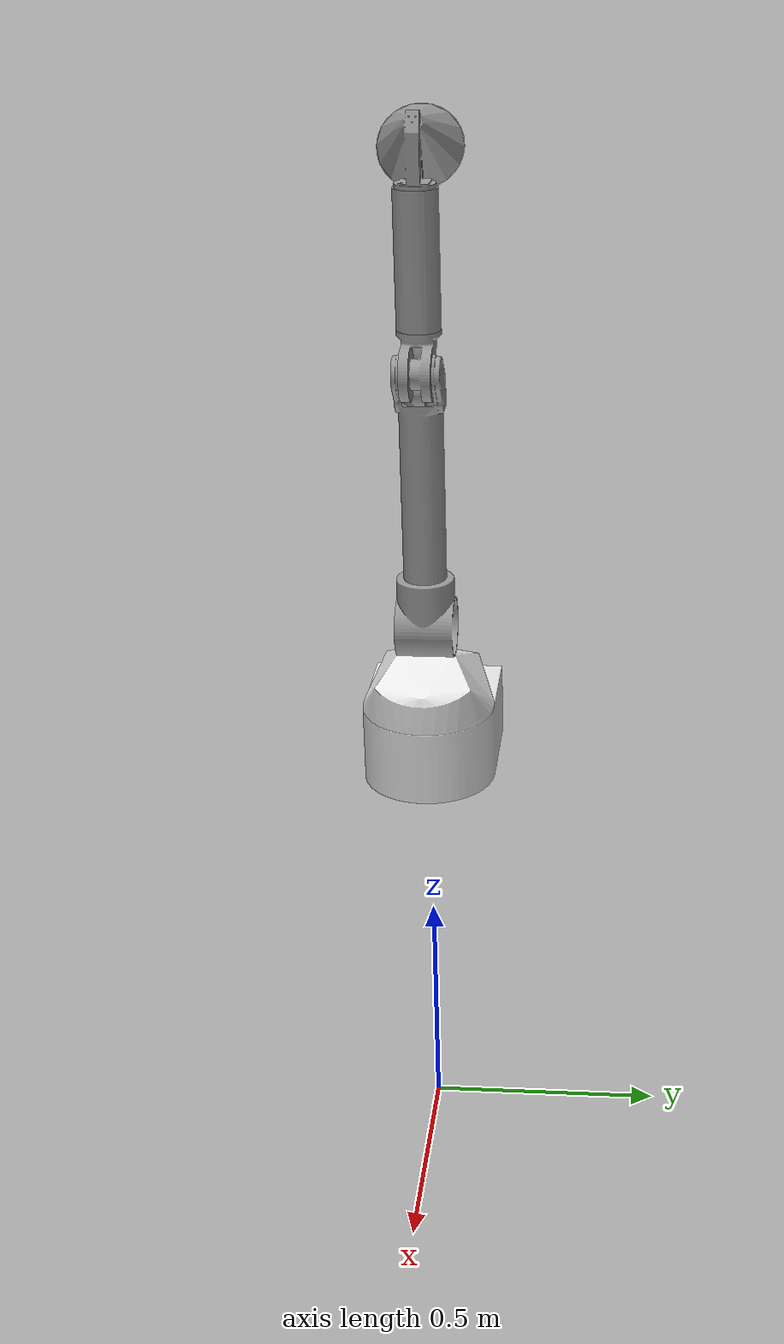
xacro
<?xml version="1.0" ?>
<robot name="wam_4dof"
        xmlns:xacro="http://www.ros.org/wiki/xacro"
        xmlns:xi="http://www.w3.org/2001/XInclude"
        xmlns:gazebo="http://playerstage.sourceforge.net/gazebo/xmlschema/#gz"
        xmlns:model="http://playerstage.sourceforge.net/gazebo/xmlschema/#model"
        xmlns:sensor="http://playerstage.sourceforge.net/gazebo/xmlschema/#sensor"
        xmlns:body="http://playerstage.sourceforge.net/gazebo/xmlschema/#body"
        xmlns:geom="http://playerstage.sourceforge.net/gazebo/xmlschema/#geom"
        xmlns:joint="http://playerstage.sourceforge.net/gazebo/xmlschema/#joint"
        xmlns:interface="http://playerstage.sourceforge.net/gazebo/xmlschema/#interface"
        xmlns:rendering="http://playerstage.sourceforge.net/gazebo/xmlschema/#rendering"
        xmlns:renderable="http://playerstage.sourceforge.net/gazebo/xmlschema/#renderable"
        xmlns:controller="http://playerstage.sourceforge.net/gazebo/xmlschema/#controller"
        xmlns:physics="http://playerstage.sourceforge.net/gazebo/xmlschema/#physics">

    <xacro:property name="mesh_base_dir" value="../meshes"/>

  #Fictional Footprint - for integration
  <link name="world"/>
  <link name="wam_footprint">
    <inertial>
        <mass value="0.0001" />
          <origin xyz="0 0 0" />
        	<inertia ixx="0.0001" ixy="0.0" ixz="0.0" iyy="0.0001" iyz="0.0" izz="0.0001" />
    </inertial>
    <visual>
      <origin xyz="0 0 0" rpy="0 0 0" />
        <geometry>
           <box size="0.001 0.001 0.001" />
        </geometry>
    </visual>
    <collision>
      <origin xyz="0 0 0.0" rpy="0 0 0" />
       <geometry>
         <box size="0.001 0.001 0.001" />
       </geometry>
    </collision>
  </link>

  #WAM BASE
  <link name="wam_base">
  	<inertial>
  	  <mass value="9.97059584"/>
	  <origin xyz="-0.02017671 -0.26604706 -0.14071720" />
	  <inertia ixx="1.01232865" ixy="0.05992441" ixz="0.05388736" iyy="0.38443311" iyz="0.37488748" izz="0.82739198"/>
	</inertial>
	<visual>
      <origin rpy="0 0 ${-pi/2}" xyz="0 0 0"/>
      <geometry name="wam_base_visual">
        <mesh filename="${mesh_base_dir}/base_link_fine.obj" />
      </geometry>
      <material name="LightGrey">
        <color rgba="0.9 0.9 0.9 1.0"/>
      </material>
    </visual>
    <collision>
      <origin rpy="0 0 ${-pi/2}" xyz="0 0 0"/>
      <geometry name="wam_base_collision">
        <mesh filename="${mesh_base_dir}/base_link_convex.obj" />
      </geometry>
      <contact_coefficients kd="1000.0" kp="1000.0" mu="0"/>
    </collision>
  </link>

  #LINK J1, Shoulder link
  <link name="j1">
    <inertial>
  	  <mass value="10.76768767"/>
	  <origin xyz="-0.00443422 0.12189039 -0.00066489"/>
	  <inertia ixx="0.29486350" ixy="-0.00795023" ixz="-0.00009311" iyy="0.11350017" iyz="0.00018711" izz="0.25065343"/>
	</inertial>
	<visual>
      <origin rpy="${pi / 2} 0 0" xyz="0 0 0"/>
      <geometry name="link_j1_visual">
        <mesh filename="${mesh_base_dir}/shoulder_link_fine.obj" />
      </geometry>
    </visual>
    <collision>
      <origin rpy="${pi / 2} 0 0" xyz="0 0 0"/>
      <geometry name="link_j1_collision">
        <mesh filename="${mesh_base_dir}/shoulder_link_convex_decomposition_p1.obj" />
      </geometry>
      <contact_coefficients kd="1000.0" kp="1000.0" mu="0"/>
    </collision>
    <collision>
      <origin rpy="${pi / 2} 0 0" xyz="0 0 0"/>
      <geometry name="link_j1_collision">
        <mesh filename="${mesh_base_dir}/shoulder_link_convex_decomposition_p2.obj" />
      </geometry>
      <contact_coefficients kd="1000.0" kp="1000.0" mu="0"/>
    </collision>
    <collision>
      <origin rpy="${pi / 2} 0 0" xyz="0 0 0"/>
      <geometry name="link_j1_collision">
        <mesh filename="${mesh_base_dir}/shoulder_link_convex_decomposition_p3.obj" />
      </geometry>
      <contact_coefficients kd="1000.0" kp="1000.0" mu="0"/>
    </collision>
  </link>

  #LINK J2, shoulder pitch link
  <link name="j2">
    <inertial>
  	  <mass value="3.87493756"/>
	  <origin xyz="-0.00236983 0.03105614 0.01542114" />
	  <inertia ixx="0.02606840" ixy="-0.00001346" ixz="-0.00011701" iyy="0.01472202" iyz="0.00003659" izz="0.01934814"/>
	</inertial>
	<visual>
      <origin rpy="0 0 0" xyz="0 0 0"/>
      <geometry name="link_j2_visual">
        <mesh filename="${mesh_base_dir}/shoulder_pitch_link_fine.obj" />
      </geometry>
    </visual>
    <collision>
      <origin rpy="0 0 0" xyz="0 0 0"/>
      <geometry name="link_j2_collision">
        <mesh filename="${mesh_base_dir}/shoulder_pitch_link_convex.obj" />
      </geometry>
      <contact_coefficients kd="1000.0" kp="1000.0" mu="0"/>
    </collision>
  </link>

  #LINK J3 upper arm link
  <link name="j3">
    <inertial>
  	  <mass value="1.80228141"/>
	  <origin xyz="-0.03825858 0.20750770 0.00003309" />
	  <inertia ixx="0.13671601" ixy="-0.01680434" ixz="0.00000510" iyy="0.00588354" iyz="-0.00000530" izz="0.13951371"/>
	</inertial>
	<visual>
      <origin rpy="${pi/2} 0 0" xyz="0 0 0"/>
      <geometry name="link_j3_visual">
        <mesh filename="${mesh_base_dir}/upper_arm_link_fine.obj" />
      </geometry>
    </visual>
    <collision>
      <origin rpy="${pi / 2} 0 0" xyz="0 0 0"/>
      <geometry name="link_j3_collision">
        <mesh filename="${mesh_base_dir}/upper_arm_link_convex_decomposition_p1.obj" />
      </geometry>
      <contact_coefficients kd="1000.0" kp="1000.0" mu="0"/>
    </collision>
    <collision>
      <origin rpy="${pi / 2} 0 0" xyz="0 0 0"/>
      <geometry name="link_j3_collision">
        <mesh filename="${mesh_base_dir}/upper_arm_link_convex_decomposition_p2.obj" />
      </geometry>
      <contact_coefficients kd="1000.0" kp="1000.0" mu="0"/>
    </collision>
  </link>

  #LINK J4, forearm base
  <link name="j4">
    <inertial>
  	  <mass value="1.06513649"/>
	  <origin xyz="0.01095471 -0.00002567 0.14053900" />
	  <inertia ixx="0.03952350" ixy="0.00000189" ixz="0.00003117" iyy="0.04008214" iyz="0.00000131" izz="0.00210299"/>
	</inertial>
	<visual>
      <origin rpy="${pi/2} ${pi} ${pi}" xyz="0 0 0"/>
      <geometry>
        <mesh filename="${mesh_base_dir}/elbow_link_fine.obj" />
      </geometry>
    </visual>
    <visual>
      <origin rpy="${pi} 0 0" xyz="-.045 0 0.214"/>
      <geometry>
        <cylinder radius=".0445" length="0.272"/>
      </geometry>
    </visual>
    <collision>
      <origin rpy="${pi / 2} ${pi} ${pi}" xyz="0 0 0"/>
      <geometry>
        <mesh filename="${mesh_base_dir}/elbow_link_convex.obj" />
      </geometry>
      <contact_coefficients kd="1000.0" kp="1000.0" mu="0"/>
    </collision>
    <collision>
      <origin rpy="${pi} 0 0" xyz="-.045 0 0.214"/>
      <geometry>
        <cylinder radius=".0445" length="0.272"/>
      </geometry>
      <contact_coefficients kd="1000.0" kp="1000.0" mu="0"/>
    </collision>
  </link>
  #LINK tool - FIXED
  <link name="tool">
    <inertial>
  	  <mass value="0.315"/>
	  <origin xyz="0 0.01 0.07"/> # TODO Check
	</inertial>
	<visual>
      <origin rpy="0 0 0" xyz="0 0 0"/>
      <geometry>
        <mesh filename="${mesh_base_dir}/throwing_tool.obj" />
      </geometry>
    </visual>
  </link>

  #LINK tool collision - FIXED
  <link name="tool_col">
	<collision>
        <origin xyz="0 0 0" rpy="0 0 0.0"/>
        <geometry>
            <mesh filename="${mesh_base_dir}/cone_convex_part_side.obj"/>
        </geometry>
    </collision>

    <collision>
        <origin xyz="0 0 0" rpy="0 0 0.17453292519943295"/>
        <geometry>
            <mesh filename="${mesh_base_dir}/cone_convex_part_side.obj"/>
        </geometry>
    </collision>

    <collision>
        <origin xyz="0 0 0" rpy="0 0 0.3490658503988659"/>
        <geometry>
            <mesh filename="${mesh_base_dir}/cone_convex_part_side.obj"/>
        </geometry>
    </collision>

    <collision>
        <origin xyz="0 0 0" rpy="0 0 0.5235987755982988"/>
        <geometry>
            <mesh filename="${mesh_base_dir}/cone_convex_part_side.obj"/>
        </geometry>
    </collision>

    <collision>
        <origin xyz="0 0 0" rpy="0 0 0.6981317007977318"/>
        <geometry>
            <mesh filename="${mesh_base_dir}/cone_convex_part_side.obj"/>
        </geometry>
    </collision>

    <collision>
        <origin xyz="0 0 0" rpy="0 0 0.8726646259971648"/>
        <geometry>
            <mesh filename="${mesh_base_dir}/cone_convex_part_side.obj"/>
        </geometry>
    </collision>

    <collision>
        <origin xyz="0 0 0" rpy="0 0 1.0471975511965976"/>
        <geometry>
            <mesh filename="${mesh_base_dir}/cone_convex_part_side.obj"/>
        </geometry>
    </collision>

    <collision>
        <origin xyz="0 0 0" rpy="0 0 1.2217304763960306"/>
        <geometry>
            <mesh filename="${mesh_base_dir}/cone_convex_part_side.obj"/>
        </geometry>
    </collision>

    <collision>
        <origin xyz="0 0 0" rpy="0 0 1.3962634015954636"/>
        <geometry>
            <mesh filename="${mesh_base_dir}/cone_convex_part_side.obj"/>
        </geometry>
    </collision>

    <collision>
        <origin xyz="0 0 0" rpy="0 0 1.5707963267948966"/>
        <geometry>
            <mesh filename="${mesh_base_dir}/cone_convex_part_side.obj"/>
        </geometry>
    </collision>

    <collision>
        <origin xyz="0 0 0" rpy="0 0 1.7453292519943295"/>
        <geometry>
            <mesh filename="${mesh_base_dir}/cone_convex_part_side.obj"/>
        </geometry>
    </collision>

    <collision>
        <origin xyz="0 0 0" rpy="0 0 1.9198621771937625"/>
        <geometry>
            <mesh filename="${mesh_base_dir}/cone_convex_part_side.obj"/>
        </geometry>
    </collision>

    <collision>
        <origin xyz="0 0 0" rpy="0 0 2.0943951023931953"/>
        <geometry>
            <mesh filename="${mesh_base_dir}/cone_convex_part_side.obj"/>
        </geometry>
    </collision>

    <collision>
        <origin xyz="0 0 0" rpy="0 0 2.2689280275926285"/>
        <geometry>
            <mesh filename="${mesh_base_dir}/cone_convex_part_side.obj"/>
        </geometry>
    </collision>

    <collision>
        <origin xyz="0 0 0" rpy="0 0 2.443460952792061"/>
        <geometry>
            <mesh filename="${mesh_base_dir}/cone_convex_part_side.obj"/>
        </geometry>
    </collision>

    <collision>
        <origin xyz="0 0 0" rpy="0 0 2.6179938779914944"/>
        <geometry>
            <mesh filename="${mesh_base_dir}/cone_convex_part_side.obj"/>
        </geometry>
    </collision>

    <collision>
        <origin xyz="0 0 0" rpy="0 0 2.792526803190927"/>
        <geometry>
            <mesh filename="${mesh_base_dir}/cone_convex_part_side.obj"/>
        </geometry>
    </collision>

    <collision>
        <origin xyz="0 0 0" rpy="0 0 2.96705972839036"/>
        <geometry>
            <mesh filename="${mesh_base_dir}/cone_convex_part_side.obj"/>
        </geometry>
    </collision>

    <collision>
        <origin xyz="0 0 0" rpy="0 0 3.141592653589793"/>
        <geometry>
            <mesh filename="${mesh_base_dir}/cone_convex_part_side.obj"/>
        </geometry>
    </collision>

    <collision>
        <origin xyz="0 0 0" rpy="0 0 3.316125578789226"/>
        <geometry>
            <mesh filename="${mesh_base_dir}/cone_convex_part_side.obj"/>
        </geometry>
    </collision>

    <collision>
        <origin xyz="0 0 0" rpy="0 0 3.490658503988659"/>
        <geometry>
            <mesh filename="${mesh_base_dir}/cone_convex_part_side.obj"/>
        </geometry>
    </collision>

    <collision>
        <origin xyz="0 0 0" rpy="0 0 3.665191429188092"/>
        <geometry>
            <mesh filename="${mesh_base_dir}/cone_convex_part_side.obj"/>
        </geometry>
    </collision>

    <collision>
        <origin xyz="0 0 0" rpy="0 0 3.839724354387525"/>
        <geometry>
            <mesh filename="${mesh_base_dir}/cone_convex_part_side.obj"/>
        </geometry>
    </collision>

    <collision>
        <origin xyz="0 0 0" rpy="0 0 4.014257279586958"/>
        <geometry>
            <mesh filename="${mesh_base_dir}/cone_convex_part_side.obj"/>
        </geometry>
    </collision>

    <collision>
        <origin xyz="0 0 0" rpy="0 0 4.1887902047863905"/>
        <geometry>
            <mesh filename="${mesh_base_dir}/cone_convex_part_side.obj"/>
        </geometry>
    </collision>

    <collision>
        <origin xyz="0 0 0" rpy="0 0 4.363323129985823"/>
        <geometry>
            <mesh filename="${mesh_base_dir}/cone_convex_part_side.obj"/>
        </geometry>
    </collision>

    <collision>
        <origin xyz="0 0 0" rpy="0 0 4.537856055185257"/>
        <geometry>
            <mesh filename="${mesh_base_dir}/cone_convex_part_side.obj"/>
        </geometry>
    </collision>

    <collision>
        <origin xyz="0 0 0" rpy="0 0 4.71238898038469"/>
        <geometry>
            <mesh filename="${mesh_base_dir}/cone_convex_part_side.obj"/>
        </geometry>
    </collision>

    <collision>
        <origin xyz="0 0 0" rpy="0 0 4.886921905584122"/>
        <geometry>
            <mesh filename="${mesh_base_dir}/cone_convex_part_side.obj"/>
        </geometry>
    </collision>

    <collision>
        <origin xyz="0 0 0" rpy="0 0 5.061454830783555"/>
        <geometry>
            <mesh filename="${mesh_base_dir}/cone_convex_part_side.obj"/>
        </geometry>
    </collision>

    <collision>
        <origin xyz="0 0 0" rpy="0 0 5.235987755982989"/>
        <geometry>
            <mesh filename="${mesh_base_dir}/cone_convex_part_side.obj"/>
        </geometry>
    </collision>

    <collision>
        <origin xyz="0 0 0" rpy="0 0 5.410520681182422"/>
        <geometry>
            <mesh filename="${mesh_base_dir}/cone_convex_part_side.obj"/>
        </geometry>
    </collision>

    <collision>
        <origin xyz="0 0 0" rpy="0 0 5.585053606381854"/>
        <geometry>
            <mesh filename="${mesh_base_dir}/cone_convex_part_side.obj"/>
        </geometry>
    </collision>

    <collision>
        <origin xyz="0 0 0" rpy="0 0 5.759586531581287"/>
        <geometry>
            <mesh filename="${mesh_base_dir}/cone_convex_part_side.obj"/>
        </geometry>
    </collision>

    <collision>
        <origin xyz="0 0 0" rpy="0 0 5.93411945678072"/>
        <geometry>
            <mesh filename="${mesh_base_dir}/cone_convex_part_side.obj"/>
        </geometry>
    </collision>

    <collision>
        <origin xyz="0 0 0" rpy="0 0 6.1086523819801535"/>
        <geometry>
            <mesh filename="${mesh_base_dir}/cone_convex_part_side.obj"/>
        </geometry>
    </collision>
  </link>

  ## Joint Descriptions
  <joint name="fix_world" type="fixed">
    <parent link="world"/>
    <child link="wam_footprint"/>
  </joint>

  <joint name="wam_basejoint" type="fixed">
    <parent link="wam_footprint"/>
    <child link="wam_base" />
    <origin xyz="0 0 0.84" rpy="0 0 ${pi/2}" />
  </joint>

  <joint name="wam_j1_joint" type="revolute">
     <origin xyz="0.0 0.0 0.346" rpy="-1.57079633 0 ${-pi/2}" />
     <parent link="wam_base"/>
     <child link="j1" />
     <axis xyz="0 1 0"/>
     <limit effort="150.0" velocity="20" lower="-2.6" upper="2.6" />
     <dynamics damping="1000"/>
  </joint >

  <joint name="wam_j2_joint" type="revolute">
     <origin xyz="0.0 0.0 0.0" rpy="0 0 0" />
     <parent link="j1"/>
     <child link="j2" />
     <axis xyz="0 0 1"/>
     <limit effort="125.0" velocity="20" lower="-2.0" upper="2.0" />
     <dynamics damping="1000"/>
  </joint >

  <joint name="wam_j3_joint" type="revolute">
     <origin xyz="0.0 0.0 0.0" rpy="0 0 0" />
     <parent link="j2"/>
     <child link="j3" />
     <axis xyz="0 1 0"/>
     <limit effort="40.0" velocity="20" lower="-2.8" upper="2.8" />
     <dynamics damping="1000"/>
  </joint >

  <joint name="wam_j4_joint" type="revolute">
     <origin xyz="0.045 -0.55 0.0" rpy="1.57079633 0 0" />
     <parent link="j3"/>
     <child link="j4" />
     <axis xyz="0 1 0"/>
     <limit effort="60.0" velocity="20" lower="-0.9" upper="3.1" />
     <dynamics damping="1000"/>
  </joint >

  <joint name="wam_tool_fixed_joint" type="fixed">
     <origin xyz="-0.045 0. ${0.35 + 0.008}" rpy="0 0 ${pi/2}" />
     <parent link="j4"/>
     <child link="tool"/>
  </joint >
  <joint name="wam_tool_col_fixed_joint" type="fixed">
     <origin xyz="0. 0.002 0.108" rpy="-2.092 0 0" />
     <parent link="tool"/>
     <child link="tool_col"/>
  </joint >

  #Adding Gazebo Requirements
  <gazebo reference="wam_world">
     <material>Gazebo/White</material>
     <selfCollide>true</selfCollide>
  </gazebo>

  <gazebo reference="wam_base">
     <material>Gazebo/White</material>
     <selfCollide>true</selfCollide>
     <turnGravityOff>true</turnGravityOff>
  </gazebo>

  <gazebo reference="j1">
     <material>Gazebo/White</material>
     <selfCollide>true</selfCollide>
     <turnGravityOff>true</turnGravityOff>
  </gazebo>

  <gazebo reference="j2">
     <material>Gazebo/Grey</material>
     <selfCollide>true</selfCollide>
     <turnGravityOff>true</turnGravityOff>
  </gazebo>

  <gazebo reference="j3">
     <material>Gazebo/Grey</material>
     <selfCollide>true</selfCollide>
     <turnGravityOff>true</turnGravityOff>
  </gazebo>

  <gazebo reference="j4">
     <material>Gazebo/Grey</material>
     <selfCollide>true</selfCollide>
     <turnGravityOff>true</turnGravityOff>
  </gazebo>

  <gazebo reference="tool">
     <material>Gazebo/Grey</material>
     <selfCollide>true</selfCollide>
     <turnGravityOff>true</turnGravityOff>
  </gazebo>

  #Adding Transmissions
  <transmission type="pr2_mechanism_model/SimpleTransmission" name="j1_transmission">
     <actuator name="j1" />
     <joint name="wam_j1_joint" />
     <mechanicalReduction>1</mechanicalReduction>
     <motorTorqueConstant>1</motorTorqueConstant>
  </transmission>

  <transmission type="pr2_mechanism_model/SimpleTransmission" name="j2_transmission">
     <actuator name="j2" />
     <joint name="wam_j2_joint" />
     <mechanicalReduction>1</mechanicalReduction>
     <motorTorqueConstant>1</motorTorqueConstant>
  </transmission>

  <transmission type="pr2_mechanism_model/SimpleTransmission" name="j3_transmission">
     <actuator name="j3" />
     <joint name="wam_j3_joint" />
     <mechanicalReduction>1</mechanicalReduction>
     <motorTorqueConstant>1</motorTorqueConstant>
  </transmission>

  <transmission type="pr2_mechanism_model/SimpleTransmission" name="j4_transmission">
     <actuator name="j4" />
     <joint name="wam_j4_joint" />
     <mechanicalReduction>1</mechanicalReduction>
     <motorTorqueConstant>1</motorTorqueConstant>
  </transmission>

</robot>
